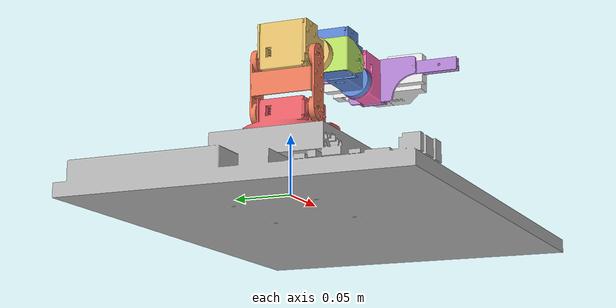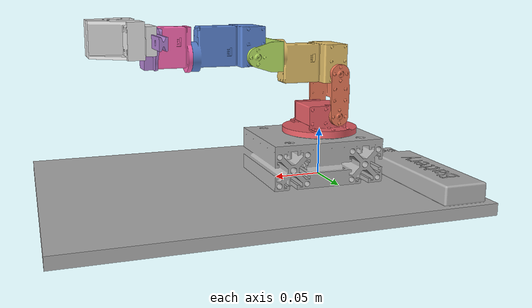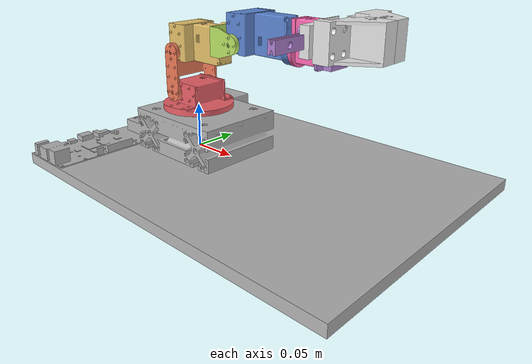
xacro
<?xml version="1.0"?>
<robot xmlns:xacro="http://www.ros.org/wiki/xacro" name="rh_plus_7_axis_robot_arm">
    <xacro:arg name="initial_positions_file" default="initial_positions.yaml" />
    <xacro:arg name="ros2_control_hardware_type" default="fake" />

    <!-- Import rh_plus_7_axis_robot_arm urdf file -->
    <xacro:include filename="$(find rh_plus_7_axis_robot_arm_description)/urdf/rh_plus_7_axis_robot_arm.xacro" />

    <!-- Import control_xacro -->
    <xacro:include filename="rh_plus_7_axis_robot_arm.ros2_control.xacro" />

    <xacro:rh_plus_7_axis_robot_arm_ros2_control name="RobotarmSystem" initial_positions_file="$(arg initial_positions_file)" ros2_control_hardware_type="$(arg ros2_control_hardware_type)"/>
</robot>

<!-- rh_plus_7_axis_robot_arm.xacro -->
<robot name="rh_plus_7_axis_robot_arm"
  xmlns:xacro="http://www.ros.org/wiki/xacro">

  <xacro:include filename="$(find rh_plus_7_axis_robot_arm_description)/urdf/materials.xacro" />
  <xacro:include filename="$(find rh_plus_7_axis_robot_arm_description)/urdf/rh_plus_7_axis_robot_arm.trans" />
  <xacro:include filename="$(find rh_plus_7_axis_robot_arm_description)/urdf/rh_plus_7_axis_robot_arm.gazebo" />
  <link name="base_link">
    <visual>
      <origin xyz="0 0 0" rpy="0 0 0"/>
      <geometry>
        <mesh filename="file://$(find rh_plus_7_axis_robot_arm_description)/meshes/base_link.stl" scale="0.001 0.001 0.001"/>
      </geometry>
      <material name="silver"/>
    </visual>
    <collision>
      <origin xyz="0 0 0" rpy="0 0 0"/>
      <geometry>
        <mesh filename="file://$(find rh_plus_7_axis_robot_arm_description)/meshes/base_link.stl" scale="0.001 0.001 0.001"/>
      </geometry>
    </collision>
  </link>

  <link name="link1">
    <inertial>
      <origin xyz="0.000274 0.000213 0.012784" rpy="0 0 0"/>
      <mass value="0.154354"/>
      <inertia ixx="0.000060621" iyy="0.000053129" izz="0.000086923" ixy="0.000000545" iyz="0.000000098" ixz="-0.000000208"/>
    </inertial>
    <visual>
      <origin xyz="0 0 0" rpy="0 0 0"/>
      <geometry>
        <mesh filename="file://$(find rh_plus_7_axis_robot_arm_description)/meshes/link1.stl" scale="0.001 0.001 0.001"/>
      </geometry>
      <material name="red"/>
    </visual>
    <collision>
      <origin xyz="0 0 0" rpy="0 0 0"/>
      <geometry>
        <mesh filename="file://$(find rh_plus_7_axis_robot_arm_description)/meshes/link1.stl" scale="0.001 0.001 0.001"/>
      </geometry>
    </collision>
  </link>

  <link name="link2">
    <inertial>
      <origin xyz="-0.001506 0.025111 0.022651" rpy="0 0 0"/>
      <mass value="0.033079"/>
      <inertia ixx="0.000032298" iyy="0.000012370" izz="0.000022548" ixy="0.000000004" iyz="0.000000000" ixz="0.000000021"/>
    </inertial>
    <visual>
      <origin xyz="0 0 0" rpy="0 0 0"/>
      <geometry>
        <mesh filename="file://$(find rh_plus_7_axis_robot_arm_description)/meshes/link2.stl" scale="0.001 0.001 0.001"/>
      </geometry>
      <material name="orange"/>
    </visual>
    <collision>
      <origin xyz="0 0 0" rpy="0 0 0"/>
      <geometry>
        <mesh filename="file://$(find rh_plus_7_axis_robot_arm_description)/meshes/link2.stl" scale="0.001 0.001 0.001"/>
      </geometry>
    </collision>
  </link>

  <link name="link3">
    <inertial>
      <origin xyz="0.019595 0.025310 0.010935" rpy="0 0 0"/>
      <mass value="0.150467"/>
      <inertia ixx="0.000036924" iyy="0.000089490" izz="0.000084428" ixy="-0.000000352" iyz="-0.000000113" ixz="0.000003249"/>
    </inertial>
    <visual>
      <origin xyz="0 0 0" rpy="0 0 0"/>
      <geometry>
        <mesh filename="file://$(find rh_plus_7_axis_robot_arm_description)/meshes/link3.stl" scale="0.001 0.001 0.001"/>
      </geometry>
      <material name="yellow"/>
    </visual>
    <collision>
      <origin xyz="0 0 0" rpy="0 0 0"/>
      <geometry>
        <mesh filename="file://$(find rh_plus_7_axis_robot_arm_description)/meshes/link3.stl" scale="0.001 0.001 0.001"/>
      </geometry>
    </collision>
  </link>

  <link name="link4">
    <inertial>
      <origin xyz="0.014885 -0.000052 0.000000" rpy="0 0 0"/>
      <mass value="0.025123"/>
      <inertia ixx="0.000013429" iyy="0.000005701" izz="0.000016678" ixy="0.000000020" iyz="0.000000000" ixz="0.000000000"/>
    </inertial>
    <visual>
      <origin xyz="0 0 0" rpy="0 0 0"/>
      <geometry>
        <mesh filename="file://$(find rh_plus_7_axis_robot_arm_description)/meshes/link4.stl" scale="0.001 0.001 0.001"/>
      </geometry>
      <material name="green"/>
    </visual>
    <collision>
      <origin xyz="0 0 0" rpy="0 0 0"/>
      <geometry>
        <mesh filename="file://$(find rh_plus_7_axis_robot_arm_description)/meshes/link4.stl" scale="0.001 0.001 0.001"/>
      </geometry>
    </collision>
  </link>

  <link name="link5">
    <inertial>
      <origin xyz="0.019458 0.025309 0.009509" rpy="0 0 0"/>
      <mass value="0.149466"/>
      <inertia ixx="0.000036606" iyy="0.000088710" izz="0.000083835" ixy="-0.000000349" iyz="-0.000000089" ixz="0.000005117"/>
    </inertial>
    <visual>
      <origin xyz="0 0 0" rpy="0 0 0"/>
      <geometry>
        <mesh filename="file://$(find rh_plus_7_axis_robot_arm_description)/meshes/link5.stl" scale="0.001 0.001 0.001"/>
      </geometry>
      <material name="blue"/>
    </visual>
    <collision>
      <origin xyz="0 0 0" rpy="0 0 0"/>
      <geometry>
        <mesh filename="file://$(find rh_plus_7_axis_robot_arm_description)/meshes/link5.stl" scale="0.001 0.001 0.001"/>
      </geometry>
    </collision>
  </link>

  <link name="link6">
    <inertial>
      <origin xyz="0.02193 0.0 0.008597" rpy="0 0 0"/>
      <mass value="0.076567"/>
      <inertia ixx="0.0000133" iyy="0.0000256" izz="0.0000179" ixy="0.0" iyz="0.0" ixz="-0.00000175"/>
    </inertial>
    <visual>
      <origin xyz="0 0 0" rpy="0 0 0"/>
      <geometry>
        <mesh filename="file://$(find rh_plus_7_axis_robot_arm_description)/meshes/link6.stl" scale="0.001 0.001 0.001"/>
      </geometry>
      <material name="pink"/>
    </visual>
    <collision>
      <origin xyz="0 0 0" rpy="0 0 0"/>
      <geometry>
        <mesh filename="file://$(find rh_plus_7_axis_robot_arm_description)/meshes/link6.stl" scale="0.001 0.001 0.001"/>
      </geometry>
    </collision>
  </link>

  <link name="gripper_base">
    <inertial>
      <origin xyz="-0.002608 0.0 -0.001469" rpy="0 0 0"/>
      <mass value="0.124676"/>
      <inertia ixx="0.0002859" iyy="0.000007381" izz="0.0002819" ixy="0.0" iyz="0.0" ixz="0.0000001069"/>
    </inertial>
    <visual>
      <origin xyz="0 0 0" rpy="0 0 0"/>
      <geometry>
        <mesh filename="file://$(find rh_plus_7_axis_robot_arm_description)/meshes/gripper_base.stl" scale="0.001 0.001 0.001"/>
      </geometry>
      <material name="purple"/>
    </visual>
    <collision>
      <origin xyz="0 0 0" rpy="0 0 0"/>
      <geometry>
        <mesh filename="file://$(find rh_plus_7_axis_robot_arm_description)/meshes/gripper_base.stl" scale="0.001 0.001 0.001"/>
      </geometry>
    </collision>
  </link>

  <link name="gripper_hand_left">
    <inertial>
      <origin xyz="-0.026669 -0.019178 -0.000713" rpy="0 0 0"/>
      <mass value="0.0043545"/>
      <inertia ixx="0.000011961" iyy="0.000013457" izz="0.000015761" ixy="-0.000005644" iyz="-0.000000206" ixz="-0.000000620"/>
    </inertial>
    <visual>
      <origin xyz="0 0 0" rpy="0 0 0"/>
      <geometry>
        <mesh filename="file://$(find rh_plus_7_axis_robot_arm_description)/meshes/gripper_hand_left.stl" scale="0.001 0.001 0.001"/>
      </geometry>
      <material name="white"/>
    </visual>
    <collision>
      <origin xyz="0 0 0" rpy="0 0 0"/>
      <geometry>
        <mesh filename="file://$(find rh_plus_7_axis_robot_arm_description)/meshes/gripper_hand_left.stl" scale="0.001 0.001 0.001"/>
      </geometry>
    </collision>
  </link>

  <link name="gripper_hand_right">
    <inertial>
      <origin xyz="-0.026669 0.019178 0.000713" rpy="0 0 0"/>
      <mass value="0.0043545"/>
      <inertia ixx="0.000011961" iyy="0.000013457" izz="0.000015761" ixy="0.000005644" iyz="0.000000206" ixz="0.000000620"/>
    </inertial>
    <visual>
      <origin xyz="0 0 0" rpy="0 0 0"/>
      <geometry>
        <mesh filename="file://$(find rh_plus_7_axis_robot_arm_description)/meshes/gripper_hand_right.stl" scale="0.001 0.001 0.001"/>
      </geometry>
      <material name="white"/>
    </visual>
    <collision>
      <origin xyz="0 0 0" rpy="0 0 0"/>
      <geometry>
        <mesh filename="file://$(find rh_plus_7_axis_robot_arm_description)/meshes/gripper_hand_right.stl" scale="0.001 0.001 0.001"/>
      </geometry>
    </collision>
  </link>

  <joint name="revolute_1" type="revolute">
    <origin xyz="0.0 -0.000293 0.045671" rpy="0 0 0"/>
    <parent link="base_link"/>
    <child link="link1"/>
    <axis xyz="0.0 0.0 1.0"/>
    <limit upper="2.094395" lower="-2.094395" effort="100" velocity="5.8178"/>
  </joint>

  <joint name="revolute_2" type="revolute">
    <origin xyz="-0.01005 -0.025341 0.021922" rpy="0 0 0"/>
    <parent link="link1"/>
    <child link="link2"/>
    <axis xyz="0.0 -1.0 0.0"/>
    <limit upper="1.570796" lower="-1.570796" effort="100" velocity="5.8178"/>
  </joint>

  <joint name="revolute_3" type="revolute">
    <origin xyz="0.0 0.000163 0.045" rpy="0 0 0"/>
    <parent link="link2"/>
    <child link="link3"/>
    <axis xyz="0.0 1.0 0.0"/>
    <limit upper="1.570796" lower="-1.658063" effort="100" velocity="5.8178"/>
  </joint>

  <joint name="revolute_4" type="revolute">
    <origin xyz="0.0611 0.025492 0.020008" rpy="0 0 0"/>
    <parent link="link3"/>
    <child link="link4"/>
    <axis xyz="1.0 0.0 0.0"/>
    <limit upper="2.094395" lower="-2.094395" effort="100" velocity="5.8178"/>
  </joint>

  <joint name="revolute_5" type="revolute">
    <origin xyz="0.0299 -0.02519 0.0" rpy="0 0 0"/>
    <parent link="link4"/>
    <child link="link5"/>
    <axis xyz="0.0 1.0 0.0"/>
    <limit upper="2.094395" lower="-0.698132" effort="100" velocity="5.8178"/>
  </joint>

  <joint name="revolute_6" type="revolute">
    <origin xyz="0.0611 0.02542 0.0" rpy="0 0 0"/>
    <parent link="link5"/>
    <child link="link6"/>
    <axis xyz="1.0 0.0 0.0"/>
    <limit upper="2.094395" lower="-2.094395" effort="100" velocity="5.8178"/>
  </joint>

  <joint name="fixed_1" type="fixed">
    <origin xyz="0.0464 0.0 0.0201" rpy="0 0 0"/>
    <parent link="link6"/>
    <child link="gripper_base"/>
  </joint>

  <joint name="slider_1" type="prismatic">
    <origin xyz="0.0552 0.0 0.000048" rpy="0 0 0"/>
    <parent link="gripper_base"/>
    <child link="gripper_hand_left"/>
    <axis xyz="0.0 -1.0 0.0"/>
    <limit upper="0.030" lower="0.0" effort="100" velocity="0.05"/>
  </joint>

  <joint name="slider_2" type="prismatic">
    <origin xyz="0.0552 0.0 0.000048" rpy="0 0 0"/>
    <parent link="gripper_base"/>
    <child link="gripper_hand_right"/>
    <axis xyz="0.0 1.0 0.0"/>
    <limit upper="0.030" lower="0.0" effort="100" velocity="0.05"/>
    <mimic joint="slider_1" multiplier="1"/>
  </joint>

</robot>

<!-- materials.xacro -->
<robot name="rh_plus_7_axis_robot_arm" xmlns:xacro="http://www.ros.org/wiki/xacro" >

<material name="silver">
  <color rgba="0.700 0.700 0.700 1.000"/>
</material>

<material name="red">
  <color rgba="0.914 0.376 0.404 1.000"/>
</material>

<material name="orange">
  <color rgba="0.918 0.475 0.345 1.000"/>
</material>

<material name="yellow">
  <color rgba="0.894 0.753 0.416 1.000"/>
</material>

<material name="green">
  <color rgba="0.722 0.886 0.392 1.000"/>
</material>

<material name="blue">
  <color rgba="0.361 0.522 0.827 1.000"/>
</material>

<material name="pink">
  <color rgba="1.000 0.412 0.706 1.000"/>
</material>

<material name="purple">
  <color rgba="0.690 0.506 0.816 1.000"/>
</material>

<material name="white">
  <color rgba="0.900 0.900 0.900 1.000"/>
</material>

</robot>

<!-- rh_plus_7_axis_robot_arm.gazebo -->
<robot name="rh_plus_7_axis_robot_arm" xmlns:xacro="http://www.ros.org/wiki/xacro" >

<xacro:property name="body_color" value="Gazebo/Silver" />

<gazebo>
  <plugin name="control" filename="libgazebo_ros_control.so"/>
</gazebo>
<gazebo reference="base_link">
  <material>${body_color}</material>
  <mu1>0.2</mu1>
  <mu2>0.2</mu2>
  <self_collide>true</self_collide>
  <gravity>true</gravity>
</gazebo>

<gazebo reference="link1">
  <material>${body_color}</material>
  <mu1>0.2</mu1>
  <mu2>0.2</mu2>
  <self_collide>true</self_collide>
</gazebo>

<gazebo reference="link2">
  <material>${body_color}</material>
  <mu1>0.2</mu1>
  <mu2>0.2</mu2>
  <self_collide>true</self_collide>
</gazebo>

<gazebo reference="link3">
  <material>${body_color}</material>
  <mu1>0.2</mu1>
  <mu2>0.2</mu2>
  <self_collide>true</self_collide>
</gazebo>

<gazebo reference="link4">
  <material>${body_color}</material>
  <mu1>0.2</mu1>
  <mu2>0.2</mu2>
  <self_collide>true</self_collide>
</gazebo>

<gazebo reference="link5">
  <material>${body_color}</material>
  <mu1>0.2</mu1>
  <mu2>0.2</mu2>
  <self_collide>true</self_collide>
</gazebo>

<gazebo reference="gripper_base">
  <material>${body_color}</material>
  <mu1>0.2</mu1>
  <mu2>0.2</mu2>
  <self_collide>true</self_collide>
</gazebo>

<gazebo reference="gripper_middle">
  <material>${body_color}</material>
  <mu1>0.2</mu1>
  <mu2>0.2</mu2>
  <self_collide>true</self_collide>
</gazebo>

<gazebo reference="gripper_hand_left">
  <material>${body_color}</material>
  <mu1>0.2</mu1>
  <mu2>0.2</mu2>
  <self_collide>true</self_collide>
</gazebo>

<gazebo reference="gripper_hand_righ1">
  <material>${body_color}</material>
  <mu1>0.2</mu1>
  <mu2>0.2</mu2>
  <self_collide>true</self_collide>
</gazebo>

<gazebo reference="gripper_arm_left">
  <material>${body_color}</material>
  <mu1>0.2</mu1>
  <mu2>0.2</mu2>
  <self_collide>true</self_collide>
</gazebo>

<gazebo reference="gripper_arm_right">
  <material>${body_color}</material>
  <mu1>0.2</mu1>
  <mu2>0.2</mu2>
  <self_collide>true</self_collide>
</gazebo>

</robot>
